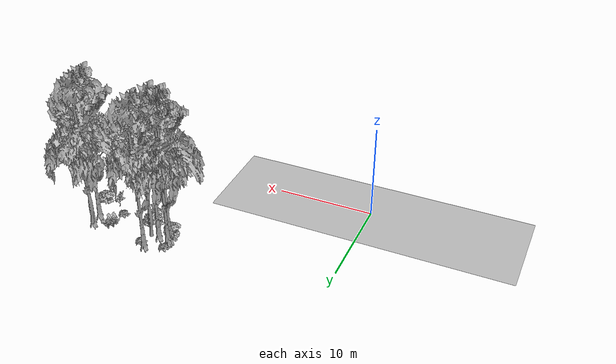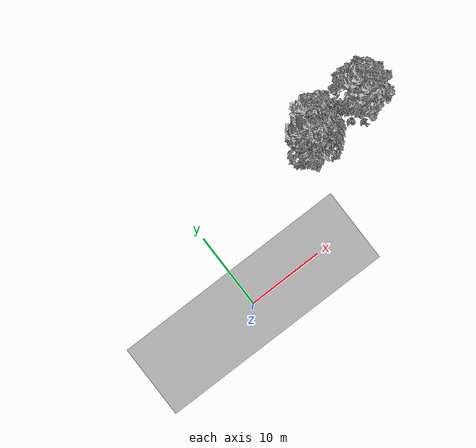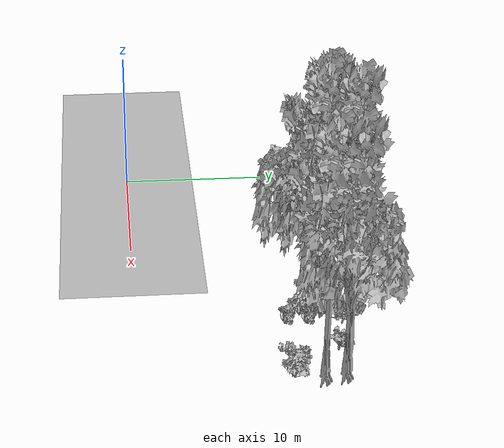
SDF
<sdf version="1.7">
 <world name="default">
  <model name="ground_plane">
   <static>1</static>
   <link name="link">
    <collision name="collision">
     <geometry><plane><normal>0 0 1</normal><size>100 100</size></plane></geometry>
     <surface><contact><ode><min_depth>0.01</min_depth><max_vel>0</max_vel></ode></contact></surface>
    </collision>
    <visual name="grass">
     <cast_shadows>0</cast_shadows>
     <geometry>
      <mesh>
       <scale>0.5814285714285714 0.18142857142857144 0.1</scale>
       <uri>file://grass_plane/meshes/grass_plane.dae</uri>
      </mesh>
     </geometry>
    </visual>
   </link>
  </model>
  <model name="Tree 96">
   <static>1</static>
   <pose>25.002354846722753 12.752654295014288 0 1.57079 -0 0</pose>
   <link name="link">
    <collision name="collision">
     <geometry><mesh><scale>3.5 5 3.5</scale><uri>model://tree_2/meshes/tree_2.obj</uri></mesh></geometry>
    </collision>
    <visual name="visual">
     <geometry><mesh><scale>3.5 5 3.5</scale><uri>model://tree_2/meshes/tree_2.obj</uri></mesh></geometry>
    </visual>
   </link>
  </model>
  <model name="Tree 124">
   <static>1</static>
   <pose>18.505852681171902 12.100256341231571 0 1.57079 -0 0</pose>
   <link name="link">
    <collision name="collision">
     <geometry><mesh><scale>3.5 5 3.5</scale><uri>model://tree_2/meshes/tree_2.obj</uri></mesh></geometry>
    </collision>
    <visual name="visual">
     <geometry><mesh><scale>3.5 5 3.5</scale><uri>model://tree_2/meshes/tree_2.obj</uri></mesh></geometry>
    </visual>
   </link>
  </model>
  <model name="Tree 125">
   <static>1</static>
   <pose>17.375822044797474 10.978674792328295 0 1.57079 -0 0</pose>
   <link name="link">
    <collision name="collision">
     <geometry><mesh><scale>3.5 5 3.5</scale><uri>model://tree_2/meshes/tree_2.obj</uri></mesh></geometry>
    </collision>
    <visual name="visual">
     <geometry><mesh><scale>3.5 5 3.5</scale><uri>model://tree_2/meshes/tree_2.obj</uri></mesh></geometry>
    </visual>
   </link>
  </model>
  <model name="Tree 132">
   <static>1</static>
   <pose>16.584335017482445 11.982696053691065 0 1.57079 -0 0</pose>
   <link name="link">
    <collision name="collision">
     <geometry><mesh><scale>3.5 5 3.5</scale><uri>model://tree_9/meshes/tree_9.obj</uri></mesh></geometry>
    </collision>
    <visual name="visual">
     <geometry><mesh><scale>3.5 5 3.5</scale><uri>model://tree_9/meshes/tree_9.obj</uri></mesh></geometry>
    </visual>
   </link>
  </model>
  <model name="Tree 140">
   <static>1</static>
   <pose>16.707983116029098 12.182500279592361 0 1.57079 -0 0</pose>
   <link name="link">
    <collision name="collision">
     <geometry><mesh><scale>3.5 5 3.5</scale><uri>model://tree_9/meshes/tree_9.obj</uri></mesh></geometry>
    </collision>
    <visual name="visual">
     <geometry><mesh><scale>3.5 5 3.5</scale><uri>model://tree_9/meshes/tree_9.obj</uri></mesh></geometry>
    </visual>
   </link>
  </model>
  <model name="Tree 172">
   <static>1</static>
   <pose>17.867732504816374 11.931688679366076 0 1.57079 -0 0</pose>
   <link name="link">
    <collision name="collision">
     <geometry><mesh><scale>3.5 5 3.5</scale><uri>model://tree_9/meshes/tree_9.obj</uri></mesh></geometry>
    </collision>
    <visual name="visual">
     <geometry><mesh><scale>3.5 5 3.5</scale><uri>model://tree_9/meshes/tree_9.obj</uri></mesh></geometry>
    </visual>
   </link>
  </model>
  <model name="Tree 306">
   <static>1</static>
   <pose>18.48226745923887 13.715535569613035 0 1.57079 -0 0</pose>
   <link name="link">
    <collision name="collision">
     <geometry><mesh><scale>3.5 5 3.5</scale><uri>model://tree_9/meshes/tree_9.obj</uri></mesh></geometry>
    </collision>
    <visual name="visual">
     <geometry><mesh><scale>3.5 5 3.5</scale><uri>model://tree_9/meshes/tree_9.obj</uri></mesh></geometry>
    </visual>
   </link>
  </model>
  <model name="Tree 350">
   <static>1</static>
   <pose>25.109272955951667 12.649391077361315 0 1.57079 -0 0</pose>
   <link name="link">
    <collision name="collision">
     <geometry><mesh><scale>3.5 5 3.5</scale><uri>model://tree_9/meshes/tree_9.obj</uri></mesh></geometry>
    </collision>
    <visual name="visual">
     <geometry><mesh><scale>3.5 5 3.5</scale><uri>model://tree_9/meshes/tree_9.obj</uri></mesh></geometry>
    </visual>
   </link>
  </model>
  <model name="Tree 401">
   <static>1</static>
   <pose>25.26943309450766 11.330735357717632 0 1.57079 -0 0</pose>
   <link name="link">
    <collision name="collision">
     <geometry><mesh><scale>3.5 5 3.5</scale><uri>model://tree_9/meshes/tree_9.obj</uri></mesh></geometry>
    </collision>
    <visual name="visual">
     <geometry><mesh><scale>3.5 5 3.5</scale><uri>model://tree_9/meshes/tree_9.obj</uri></mesh></geometry>
    </visual>
   </link>
  </model>
  <model name="Bush 39">
   <static>1</static>
   <pose>16.546001179285184 11.30596347560639 0 1.57079 -0 0</pose>
   <link name="link">
    <collision name="collision">
     <geometry><mesh><scale>2 2 2</scale><uri>model://bush_1/meshes/bush_1.obj</uri></mesh></geometry>
     <surface><contact><collide_without_contact>false</collide_without_contact></contact></surface>
    </collision>
    <visual name="visual">
     <geometry><mesh><scale>2 2 2</scale><uri>model://bush_1/meshes/bush_1.obj</uri></mesh></geometry>
    </visual>
   </link>
  </model>
  <model name="Bush 48">
   <static>1</static>
   <pose>25.453715004356937 9.43299950349606 0 1.57079 -0 0</pose>
   <link name="link">
    <collision name="collision">
     <geometry><mesh><scale>2 2 2</scale><uri>model://bush_1/meshes/bush_1.obj</uri></mesh></geometry>
     <surface><contact><collide_without_contact>false</collide_without_contact></contact></surface>
    </collision>
    <visual name="visual">
     <geometry><mesh><scale>2 2 2</scale><uri>model://bush_1/meshes/bush_1.obj</uri></mesh></geometry>
    </visual>
   </link>
  </model>
  <model name="Bush 74">
   <static>1</static>
   <pose>19.674228276567874 10.95824392004964 0 1.57079 -0 0</pose>
   <link name="link">
    <collision name="collision">
     <geometry><mesh><scale>2 2 2</scale><uri>model://bush_4/meshes/bush_4.obj</uri></mesh></geometry>
     <surface><contact><collide_without_contact>false</collide_without_contact></contact></surface>
    </collision>
    <visual name="visual">
     <geometry><mesh><scale>2 2 2</scale><uri>model://bush_4/meshes/bush_4.obj</uri></mesh></geometry>
    </visual>
   </link>
  </model>
  <model name="Bush 84">
   <static>1</static>
   <pose>16.473479865655563 13.256329275657905 0 1.57079 -0 0</pose>
   <link name="link">
    <collision name="collision">
     <geometry><mesh><scale>2 2 2</scale><uri>model://bush_2/meshes/bush_2.obj</uri></mesh></geometry>
     <surface><contact><collide_without_contact>false</collide_without_contact></contact></surface>
    </collision>
    <visual name="visual">
     <geometry><mesh><scale>2 2 2</scale><uri>model://bush_2/meshes/bush_2.obj</uri></mesh></geometry>
    </visual>
   </link>
  </model>
  <model name="Bush 96">
   <static>1</static>
   <pose>18.999179210279692 13.360256077246593 0 1.57079 -0 0</pose>
   <link name="link">
    <collision name="collision">
     <geometry><mesh><scale>2 2 2</scale><uri>model://bush_2/meshes/bush_2.obj</uri></mesh></geometry>
     <surface><contact><collide_without_contact>false</collide_without_contact></contact></surface>
    </collision>
    <visual name="visual">
     <geometry><mesh><scale>2 2 2</scale><uri>model://bush_2/meshes/bush_2.obj</uri></mesh></geometry>
    </visual>
   </link>
  </model>
  <model name="Bush 102">
   <static>1</static>
   <pose>23.134191965138356 12.918519620820334 0 1.57079 -0 0</pose>
   <link name="link">
    <collision name="collision">
     <geometry><mesh><scale>2 2 2</scale><uri>model://bush_0/meshes/bush_0.obj</uri></mesh></geometry>
     <surface><contact><collide_without_contact>false</collide_without_contact></contact></surface>
    </collision>
    <visual name="visual">
     <geometry><mesh><scale>2 2 2</scale><uri>model://bush_0/meshes/bush_0.obj</uri></mesh></geometry>
    </visual>
   </link>
  </model>
  <model name="Bush 117">
   <static>1</static>
   <pose>19.5927647919261 9.608845020805223 0 1.57079 -0 0</pose>
   <link name="link">
    <collision name="collision">
     <geometry><mesh><scale>2 2 2</scale><uri>model://bush_4/meshes/bush_4.obj</uri></mesh></geometry>
     <surface><contact><collide_without_contact>false</collide_without_contact></contact></surface>
    </collision>
    <visual name="visual">
     <geometry><mesh><scale>2 2 2</scale><uri>model://bush_4/meshes/bush_4.obj</uri></mesh></geometry>
    </visual>
   </link>
  </model>
  <model name="Bush 221">
   <static>1</static>
   <pose>18.76944985893428 10.594539728652695 0 1.57079 -0 0</pose>
   <link name="link">
    <collision name="collision">
     <geometry><mesh><scale>2 2 2</scale><uri>model://bush_1/meshes/bush_1.obj</uri></mesh></geometry>
     <surface><contact><collide_without_contact>false</collide_without_contact></contact></surface>
    </collision>
    <visual name="visual">
     <geometry><mesh><scale>2 2 2</scale><uri>model://bush_1/meshes/bush_1.obj</uri></mesh></geometry>
    </visual>
   </link>
  </model>
  <model name="Bush 225">
   <static>1</static>
   <pose>16.377596196533617 11.774273835092984 0 1.57079 -0 0</pose>
   <link name="link">
    <collision name="collision">
     <geometry><mesh><scale>2 2 2</scale><uri>model://bush_3/meshes/bush_3.obj</uri></mesh></geometry>
     <surface><contact><collide_without_contact>false</collide_without_contact></contact></surface>
    </collision>
    <visual name="visual">
     <geometry><mesh><scale>2 2 2</scale><uri>model://bush_3/meshes/bush_3.obj</uri></mesh></geometry>
    </visual>
   </link>
  </model>
  <model name="Bush 255">
   <static>1</static>
   <pose>22.794929885292177 12.548335570889623 0 1.57079 -0 0</pose>
   <link name="link">
    <collision name="collision">
     <geometry><mesh><scale>2 2 2</scale><uri>model://bush_0/meshes/bush_0.obj</uri></mesh></geometry>
     <surface><contact><collide_without_contact>false</collide_without_contact></contact></surface>
    </collision>
    <visual name="visual">
     <geometry><mesh><scale>2 2 2</scale><uri>model://bush_0/meshes/bush_0.obj</uri></mesh></geometry>
    </visual>
   </link>
  </model>
  <model name="Bush 271">
   <static>1</static>
   <pose>24.135726022217142 9.36189294720733 0 1.57079 -0 0</pose>
   <link name="link">
    <collision name="collision">
     <geometry><mesh><scale>2 2 2</scale><uri>model://bush_5/meshes/bush_5.obj</uri></mesh></geometry>
     <surface><contact><collide_without_contact>false</collide_without_contact></contact></surface>
    </collision>
    <visual name="visual">
     <geometry><mesh><scale>2 2 2</scale><uri>model://bush_5/meshes/bush_5.obj</uri></mesh></geometry>
    </visual>
   </link>
  </model>
  <model name="Bush 282">
   <static>1</static>
   <pose>22.96951044178776 10.30003406528554 0 1.57079 -0 0</pose>
   <link name="link">
    <collision name="collision">
     <geometry><mesh><scale>2 2 2</scale><uri>model://bush_2/meshes/bush_2.obj</uri></mesh></geometry>
     <surface><contact><collide_without_contact>false</collide_without_contact></contact></surface>
    </collision>
    <visual name="visual">
     <geometry><mesh><scale>2 2 2</scale><uri>model://bush_2/meshes/bush_2.obj</uri></mesh></geometry>
    </visual>
   </link>
  </model>
 </world>
</sdf>
